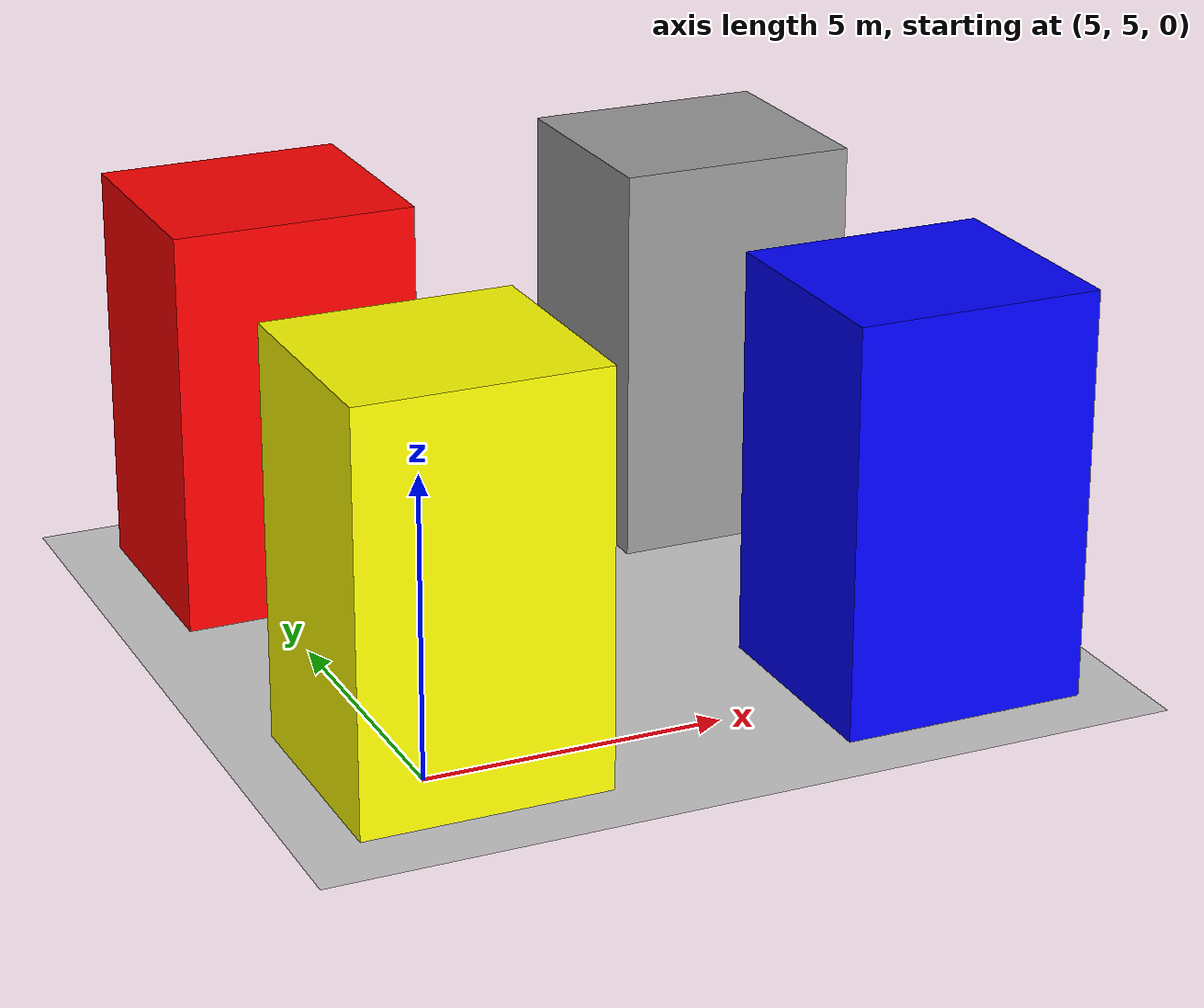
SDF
<sdf version="1.6">
 <world name="default">
  <light name="sun" type="directional">
   <pose>0 0 10 0 -0 0</pose>
   <diffuse>0.8 0.8 0.8 1</diffuse>
   <specular>0.2 0.2 0.2 1</specular>
   <attenuation>
    <range>1000</range>
    <constant>0.9</constant>
    <linear>0.01</linear>
    <quadratic>0.001</quadratic>
   </attenuation>
   <direction>-0.5 0.1 -0.9</direction>
  </light>
  <model name="ground_plane">
   <static>1</static>
   <link name="link">
    <collision name="collision">
     <geometry><plane><normal>0 0 1</normal><size>100 100</size></plane></geometry>
     <surface>
      <contact><collide_bitmask>65535</collide_bitmask></contact>
      <friction><ode><mu>100</mu><mu2>50</mu2></ode></friction>
     </surface>
    </collision>
    <visual name="visual">
     <cast_shadows>0</cast_shadows>
     <geometry><plane><normal>0 0 1</normal><size>100 100</size></plane></geometry>
     <material>
      <script><uri>file://media/materials/scripts/gazebo.material</uri><name>Gazebo/Grey</name></script>
     </material>
    </visual>
   </link>
  </model>
  <gravity>0 0 -9.8</gravity>
  <magnetic_field>6e-06 2.3e-05 -4.2e-05</magnetic_field>
  <atmosphere type="adiabatic"/>
  <physics name="default_physics" default="0" type="ode">
   <max_step_size>0.001</max_step_size>
   <real_time_factor>1</real_time_factor>
   <real_time_update_rate>1000</real_time_update_rate>
  </physics>
  <scene><ambient>0.4 0.4 0.4 1</ambient><background>0.7 0.7 0.7 1</background><shadows>1</shadows></scene>
  <audio><device>default</device></audio>
  <spherical_coordinates>
   <surface_model>EARTH_WGS84</surface_model>
   <latitude_deg>0</latitude_deg>
   <longitude_deg>0</longitude_deg>
   <elevation>0</elevation>
   <heading_deg>0</heading_deg>
  </spherical_coordinates>
  <model name="Predio_Amarelo">
   <link name="link_1">
    <inertial>
     <mass>107.683</mass>
     <inertia><ixx>550.399</ixx><ixy>0</ixy><ixz>0</ixz><iyy>570.627</iyy><iyz>0</iyz><izz>283.629</izz></inertia>
    </inertial>
    <visual name="visual">
     <geometry><box><size>4.11469 3.83099 6.83074</size></box></geometry>
     <material>
      <lighting>1</lighting>
      <script><uri>file://media/materials/scripts/gazebo.material</uri><name>Gazebo/Grey</name></script>
      <shader type="pixel"><normal_map>__default__</normal_map></shader>
      <ambient>1 1 0 1</ambient>
      <diffuse>0.7 0.7 0.7 1</diffuse>
      <specular>0.01 0.01 0.01 1</specular>
      <emissive>0 0 0 1</emissive>
     </material>
    </visual>
    <collision name="collision">
     <geometry><box><size>4.11469 3.83099 6.83074</size></box></geometry>
     <surface>
      <friction>
       <ode><mu>1</mu><mu2>1</mu2><fdir1>0 0 0</fdir1><slip1>0</slip1><slip2>0</slip2></ode>
       <torsional>
        <coefficient>1</coefficient>
        <patch_radius>0</patch_radius>
        <surface_radius>0</surface_radius>
        <use_patch_radius>1</use_patch_radius>
        <ode><slip>0</slip></ode>
       </torsional>
      </friction>
      <bounce><restitution_coefficient>0</restitution_coefficient><threshold>1e+06</threshold></bounce>
      <contact>
       <collide_without_contact>0</collide_without_contact>
       <collide_without_contact_bitmask>1</collide_without_contact_bitmask>
       <collide_bitmask>1</collide_bitmask>
       <ode>
        <soft_cfm>0</soft_cfm>
        <soft_erp>0.2</soft_erp>
        <kp>1e+13</kp>
        <kd>1</kd>
        <max_vel>0.01</max_vel>
        <min_depth>0</min_depth>
       </ode>
       <bullet>
        <split_impulse>1</split_impulse>
        <split_impulse_penetration_threshold>-0.01</split_impulse_penetration_threshold>
        <soft_cfm>0</soft_cfm>
        <soft_erp>0.2</soft_erp>
        <kp>1e+13</kp>
        <kd>1</kd>
       </bullet>
      </contact>
     </surface>
    </collision>
   </link>
   <static>0</static>
   <pose>5.46247 5.44838 3.41537 -0 -0 -0</pose>
  </model>
  <model name="Predio_Azul">
   <link name="link_1">
    <inertial>
     <mass>107.683</mass>
     <inertia><ixx>550.399</ixx><ixy>0</ixy><ixz>0</ixz><iyy>570.627</iyy><iyz>0</iyz><izz>283.629</izz></inertia>
    </inertial>
    <visual name="visual">
     <geometry><box><size>4.11469 3.83099 6.83074</size></box></geometry>
     <material>
      <lighting>1</lighting>
      <script><uri>file://media/materials/scripts/gazebo.material</uri><name>Gazebo/Grey</name></script>
      <shader type="pixel"><normal_map>__default__</normal_map></shader>
      <ambient>0 0 1 1</ambient>
      <diffuse>0.7 0.7 0.7 1</diffuse>
      <specular>0.01 0.01 0.01 1</specular>
      <emissive>0 0 0 1</emissive>
     </material>
    </visual>
    <collision name="collision">
     <geometry><box><size>4.11469 3.83099 6.83074</size></box></geometry>
     <surface>
      <friction>
       <ode><mu>1</mu><mu2>1</mu2><fdir1>0 0 0</fdir1><slip1>0</slip1><slip2>0</slip2></ode>
       <torsional>
        <coefficient>1</coefficient>
        <patch_radius>0</patch_radius>
        <surface_radius>0</surface_radius>
        <use_patch_radius>1</use_patch_radius>
        <ode><slip>0</slip></ode>
       </torsional>
      </friction>
      <bounce><restitution_coefficient>0</restitution_coefficient><threshold>1e+06</threshold></bounce>
      <contact>
       <collide_without_contact>0</collide_without_contact>
       <collide_without_contact_bitmask>1</collide_without_contact_bitmask>
       <collide_bitmask>1</collide_bitmask>
       <ode>
        <soft_cfm>0</soft_cfm>
        <soft_erp>0.2</soft_erp>
        <kp>1e+13</kp>
        <kd>1</kd>
        <max_vel>0.01</max_vel>
        <min_depth>0</min_depth>
       </ode>
       <bullet>
        <split_impulse>1</split_impulse>
        <split_impulse_penetration_threshold>-0.01</split_impulse_penetration_threshold>
        <soft_cfm>0</soft_cfm>
        <soft_erp>0.2</soft_erp>
        <kp>1e+13</kp>
        <kd>1</kd>
       </bullet>
      </contact>
     </surface>
    </collision>
   </link>
   <static>0</static>
   <pose>13.5616 5.40007 3.41537 0 -0 0</pose>
  </model>
  <model name="Predio_Vermelho">
   <link name="link_1">
    <inertial>
     <mass>107.683</mass>
     <inertia><ixx>550.399</ixx><ixy>0</ixy><ixz>0</ixz><iyy>570.627</iyy><iyz>0</iyz><izz>283.629</izz></inertia>
    </inertial>
    <visual name="visual">
     <geometry><box><size>4.11469 3.83099 6.83074</size></box></geometry>
     <material>
      <lighting>1</lighting>
      <script><uri>file://media/materials/scripts/gazebo.material</uri><name>Gazebo/Grey</name></script>
      <shader type="pixel"><normal_map>__default__</normal_map></shader>
      <ambient>1 0 0 1</ambient>
      <diffuse>0.7 0.7 0.7 1</diffuse>
      <specular>0.01 0.01 0.01 1</specular>
      <emissive>0 0 0 1</emissive>
     </material>
    </visual>
    <collision name="collision">
     <geometry><box><size>4.11469 3.83099 6.83074</size></box></geometry>
     <surface>
      <friction>
       <ode><mu>1</mu><mu2>1</mu2><fdir1>0 0 0</fdir1><slip1>0</slip1><slip2>0</slip2></ode>
       <torsional>
        <coefficient>1</coefficient>
        <patch_radius>0</patch_radius>
        <surface_radius>0</surface_radius>
        <use_patch_radius>1</use_patch_radius>
        <ode><slip>0</slip></ode>
       </torsional>
      </friction>
      <bounce><restitution_coefficient>0</restitution_coefficient><threshold>1e+06</threshold></bounce>
      <contact>
       <collide_without_contact>0</collide_without_contact>
       <collide_without_contact_bitmask>1</collide_without_contact_bitmask>
       <collide_bitmask>1</collide_bitmask>
       <ode>
        <soft_cfm>0</soft_cfm>
        <soft_erp>0.2</soft_erp>
        <kp>1e+13</kp>
        <kd>1</kd>
        <max_vel>0.01</max_vel>
        <min_depth>0</min_depth>
       </ode>
       <bullet>
        <split_impulse>1</split_impulse>
        <split_impulse_penetration_threshold>-0.01</split_impulse_penetration_threshold>
        <soft_cfm>0</soft_cfm>
        <soft_erp>0.2</soft_erp>
        <kp>1e+13</kp>
        <kd>1</kd>
       </bullet>
      </contact>
     </surface>
    </collision>
   </link>
   <static>0</static>
   <pose>5.54136 13.4892 3.41537 -0 -0 -0</pose>
  </model>
  <model name="Predio">
   <link name="link_1">
    <inertial>
     <mass>107.683</mass>
     <inertia><ixx>550.399</ixx><ixy>0</ixy><ixz>0</ixz><iyy>570.627</iyy><iyz>0</iyz><izz>283.629</izz></inertia>
    </inertial>
    <visual name="visual">
     <geometry><box><size>4.11469 3.83099 6.83074</size></box></geometry>
     <material>
      <lighting>1</lighting>
      <script><uri>file://media/materials/scripts/gazebo.material</uri><name>Gazebo/Grey</name></script>
      <shader type="pixel"/>
     </material>
    </visual>
    <collision name="collision">
     <geometry><box><size>4.11469 3.83099 6.83074</size></box></geometry>
     <surface>
      <friction>
       <ode><mu>1</mu><mu2>1</mu2><fdir1>0 0 0</fdir1><slip1>0</slip1><slip2>0</slip2></ode>
       <torsional>
        <coefficient>1</coefficient>
        <patch_radius>0</patch_radius>
        <surface_radius>0</surface_radius>
        <use_patch_radius>1</use_patch_radius>
        <ode><slip>0</slip></ode>
       </torsional>
      </friction>
      <bounce><restitution_coefficient>0</restitution_coefficient><threshold>1e+06</threshold></bounce>
      <contact>
       <collide_without_contact>0</collide_without_contact>
       <collide_without_contact_bitmask>1</collide_without_contact_bitmask>
       <collide_bitmask>1</collide_bitmask>
       <ode>
        <soft_cfm>0</soft_cfm>
        <soft_erp>0.2</soft_erp>
        <kp>1e+13</kp>
        <kd>1</kd>
        <max_vel>0.01</max_vel>
        <min_depth>0</min_depth>
       </ode>
       <bullet>
        <split_impulse>1</split_impulse>
        <split_impulse_penetration_threshold>-0.01</split_impulse_penetration_threshold>
        <soft_cfm>0</soft_cfm>
        <soft_erp>0.2</soft_erp>
        <kp>1e+13</kp>
        <kd>1</kd>
       </bullet>
      </contact>
     </surface>
    </collision>
   </link>
   <static>0</static>
   <pose>13.4969 13.4509 3.41537 0 -0 0</pose>
  </model>
 </world>
</sdf>
